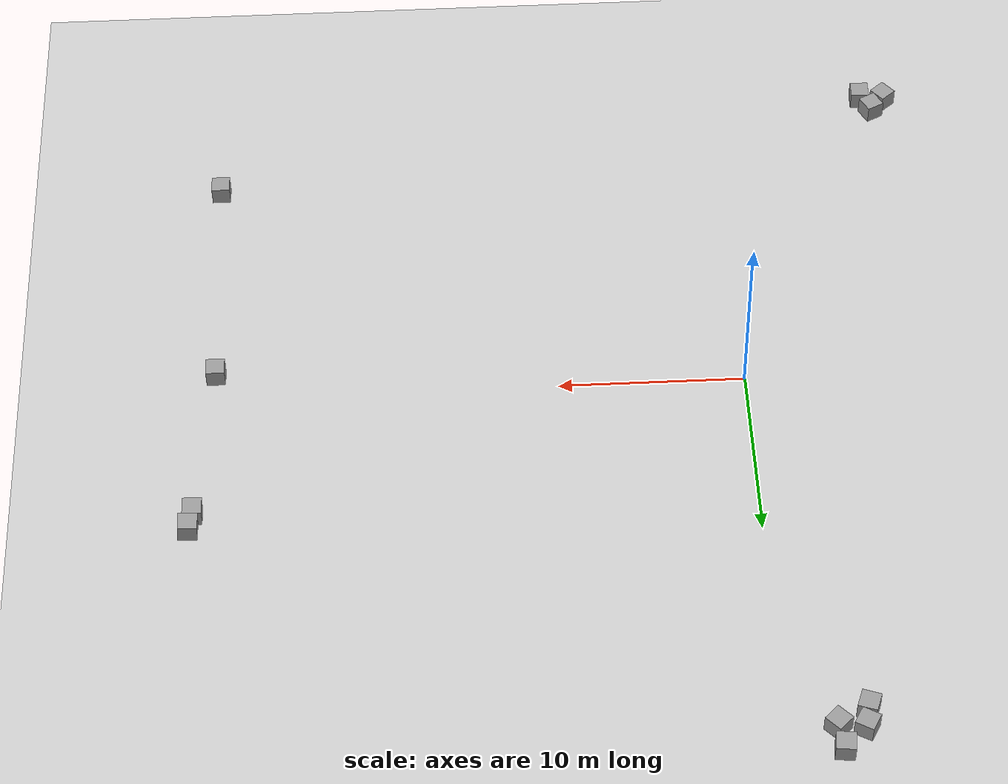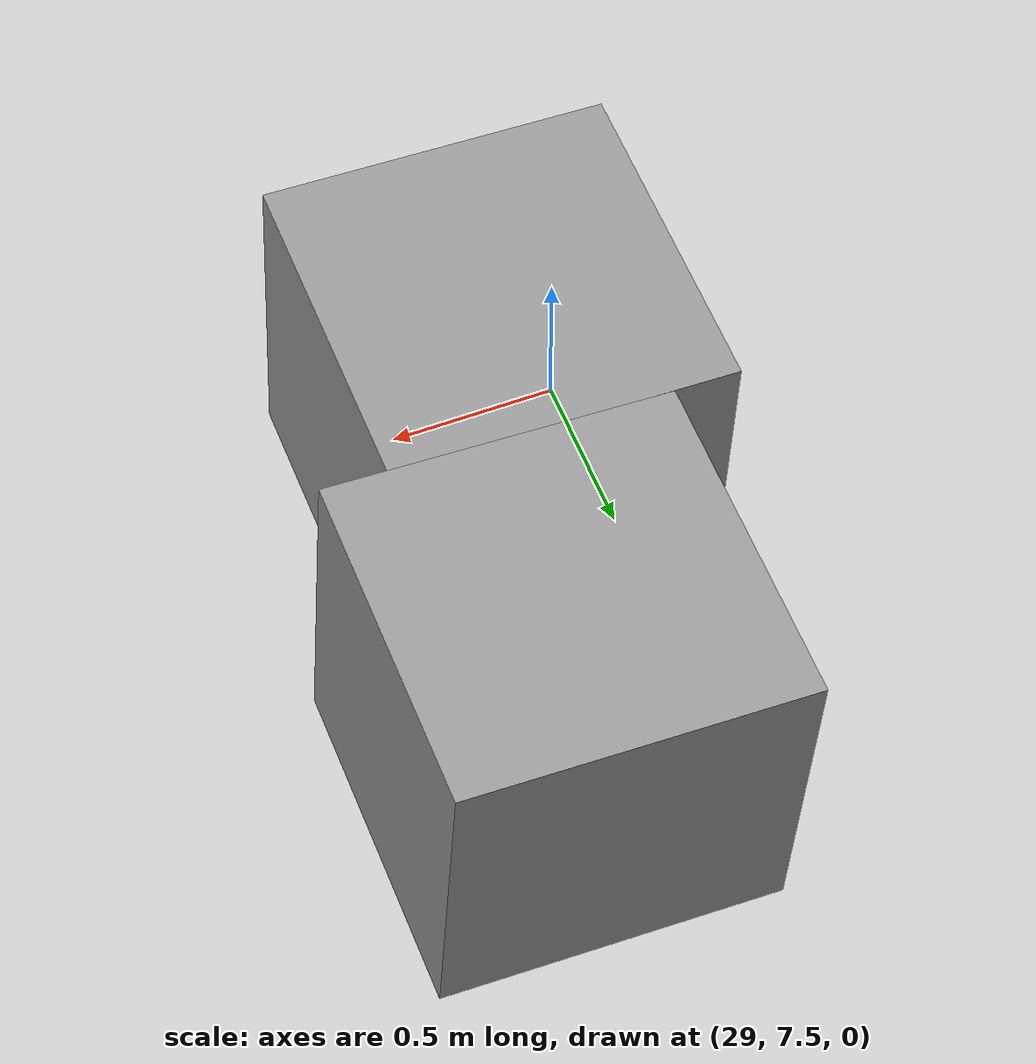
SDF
<sdf version="1.6">
 <world name="default">
  <model name="ground_plane">
   <static>1</static>
   <link name="link">
    <collision name="collision">
     <geometry><plane><normal>0 0 1</normal><size>100 100</size></plane></geometry>
     <surface><friction><ode><mu>100</mu><mu2>50</mu2></ode></friction></surface>
    </collision>
    <visual name="visual">
     <cast_shadows>0</cast_shadows>
     <geometry><plane><normal>0 0 1</normal><size>100 100</size></plane></geometry>
     <material>
      <script><uri>file://media/materials/scripts/gazebo.material</uri><name>Gazebo/Grey</name></script>
     </material>
    </visual>
   </link>
  </model>
  <light name="sun" type="directional">
   <pose>0 0 10 0 -0 0</pose>
   <diffuse>0.8 0.8 0.8 1</diffuse>
   <specular>0.1 0.1 0.1 1</specular>
   <attenuation>
    <range>1000</range>
    <constant>0.9</constant>
    <linear>0.01</linear>
    <quadratic>0.001</quadratic>
   </attenuation>
   <direction>-0.5 0.5 -1</direction>
  </light>
  <gravity>0 0 -9.8</gravity>
  <magnetic_field>6e-06 2.3e-05 -4.2e-05</magnetic_field>
  <atmosphere type="adiabatic"/>
  <physics name="default_physics" default="0" type="ode">
   <max_step_size>0.001</max_step_size>
   <real_time_factor>1</real_time_factor>
   <real_time_update_rate>1000</real_time_update_rate>
  </physics>
  <scene><ambient>0.4 0.4 0.4 1</ambient><background>0.7 0.7 0.7 1</background><shadows>1</shadows></scene>
  <spherical_coordinates>
   <surface_model>EARTH_WGS84</surface_model>
   <latitude_deg>0</latitude_deg>
   <longitude_deg>0</longitude_deg>
   <elevation>0</elevation>
   <heading_deg>0</heading_deg>
  </spherical_coordinates>
  <model name="unit_box_0">
   <pose>-9.18921 -19.7676 0.5 0 -0 0.461617</pose>
   <link name="link">
    <inertial>
     <mass>1</mass>
     <inertia>
      <ixx>0.166667</ixx>
      <ixy>0</ixy>
      <ixz>0</ixz>
      <iyy>0.166667</iyy>
      <iyz>0</iyz>
      <izz>0.166667</izz>
     </inertia>
    </inertial>
    <collision name="collision"><geometry><box><size>1 1 1</size></box></geometry></collision>
    <visual name="visual">
     <geometry><box><size>1 1 1</size></box></geometry>
     <material>
      <script><name>Gazebo/Grey</name><uri>file://media/materials/scripts/gazebo.material</uri></script>
     </material>
    </visual>
   </link>
  </model>
  <model name="unit_box_1_0">
   <pose>-2.45343 22.4637 0.5 0 -0 0.765343</pose>
   <link name="link">
    <inertial>
     <mass>1</mass>
     <inertia>
      <ixx>0.166667</ixx>
      <ixy>0</ixy>
      <ixz>0</ixz>
      <iyy>0.166667</iyy>
      <iyz>0</iyz>
      <izz>0.166667</izz>
     </inertia>
    </inertial>
    <collision name="collision"><geometry><box><size>1 1 1</size></box></geometry></collision>
    <visual name="visual">
     <geometry><box><size>1 1 1</size></box></geometry>
     <material>
      <script><name>Gazebo/Grey</name><uri>file://media/materials/scripts/gazebo.material</uri></script>
     </material>
    </visual>
   </link>
  </model>
  <model name="unit_box_1_1">
   <pose>-4.05764 21.5138 0.499996 -9e-06 0 -0.348044</pose>
   <link name="link">
    <inertial>
     <mass>1</mass>
     <inertia>
      <ixx>0.166667</ixx>
      <ixy>0</ixy>
      <ixz>0</ixz>
      <iyy>0.166667</iyy>
      <iyz>0</iyz>
      <izz>0.166667</izz>
     </inertia>
    </inertial>
    <collision name="collision"><geometry><box><size>1 1 1</size></box></geometry></collision>
    <visual name="visual">
     <geometry><box><size>1 1 1</size></box></geometry>
     <material>
      <script><name>Gazebo/Grey</name><uri>file://media/materials/scripts/gazebo.material</uri></script>
     </material>
    </visual>
   </link>
  </model>
  <model name="unit_box_1_3">
   <pose>28.294 -1.56728 0.499995 -0 1e-05 1e-06</pose>
   <link name="link">
    <inertial>
     <mass>1</mass>
     <inertia>
      <ixx>0.166667</ixx>
      <ixy>0</ixy>
      <ixz>0</ixz>
      <iyy>0.166667</iyy>
      <iyz>0</iyz>
      <izz>0.166667</izz>
     </inertia>
    </inertial>
    <collision name="collision"><geometry><box><size>1 1 1</size></box></geometry></collision>
    <visual name="visual">
     <geometry><box><size>1 1 1</size></box></geometry>
     <material>
      <script><name>Gazebo/Grey</name><uri>file://media/materials/scripts/gazebo.material</uri></script>
     </material>
    </visual>
   </link>
  </model>
  <model name="unit_box_1_4">
   <pose>28.2793 -15.0921 0.499995 0 1e-05 0</pose>
   <link name="link">
    <inertial>
     <mass>1</mass>
     <inertia>
      <ixx>0.166667</ixx>
      <ixy>0</ixy>
      <ixz>0</ixz>
      <iyy>0.166667</iyy>
      <iyz>0</iyz>
      <izz>0.166667</izz>
     </inertia>
    </inertial>
    <collision name="collision"><geometry><box><size>1 1 1</size></box></geometry></collision>
    <visual name="visual">
     <geometry><box><size>1 1 1</size></box></geometry>
     <material>
      <script><name>Gazebo/Grey</name><uri>file://media/materials/scripts/gazebo.material</uri></script>
     </material>
    </visual>
   </link>
  </model>
  <model name="unit_box_1">
   <pose>29.502 8.80505 0.535867 -0.0007 -0.060654 -0.001056</pose>
   <link name="link">
    <inertial>
     <mass>1</mass>
     <inertia>
      <ixx>0.166667</ixx>
      <ixy>0</ixy>
      <ixz>0</ixz>
      <iyy>0.166667</iyy>
      <iyz>0</iyz>
      <izz>0.166667</izz>
     </inertia>
    </inertial>
    <collision name="collision"><geometry><box><size>1 1 1</size></box></geometry></collision>
    <visual name="visual">
     <geometry><box><size>1 1 1</size></box></geometry>
     <material>
      <script><name>Gazebo/Grey</name><uri>file://media/materials/scripts/gazebo.material</uri></script>
     </material>
    </visual>
   </link>
  </model>
  <model name="unit_box_2">
   <pose>29.2997 7.80564 0.519301 -0.000747 -0.03958 -0.001564</pose>
   <link name="link">
    <inertial>
     <mass>1</mass>
     <inertia>
      <ixx>0.166667</ixx>
      <ixy>0</ixy>
      <ixz>0</ixz>
      <iyy>0.166667</iyy>
      <iyz>0</iyz>
      <izz>0.166667</izz>
     </inertia>
    </inertial>
    <collision name="collision"><geometry><box><size>1 1 1</size></box></geometry></collision>
    <visual name="visual">
     <geometry><box><size>1 1 1</size></box></geometry>
     <material>
      <script><name>Gazebo/Grey</name><uri>file://media/materials/scripts/gazebo.material</uri></script>
     </material>
    </visual>
   </link>
  </model>
  <model name="unit_box_3">
   <pose>-9.94253 -20.585 0.5 0 0 -0.882522</pose>
   <link name="link">
    <inertial>
     <mass>1</mass>
     <inertia>
      <ixx>0.166667</ixx>
      <ixy>0</ixy>
      <ixz>0</ixz>
      <iyy>0.166667</iyy>
      <iyz>0</iyz>
      <izz>0.166667</izz>
     </inertia>
    </inertial>
    <collision name="collision"><geometry><box><size>1 1 1</size></box></geometry></collision>
    <visual name="visual">
     <geometry><box><size>1 1 1</size></box></geometry>
     <material>
      <script><name>Gazebo/Grey</name><uri>file://media/materials/scripts/gazebo.material</uri></script>
     </material>
    </visual>
   </link>
  </model>
  <model name="unit_box_4">
   <pose>-8.6151 -20.7965 0.499995 1e-05 0 -0.028148</pose>
   <link name="link">
    <inertial>
     <mass>1</mass>
     <inertia>
      <ixx>0.166667</ixx>
      <ixy>0</ixy>
      <ixz>0</ixz>
      <iyy>0.166667</iyy>
      <iyz>0</iyz>
      <izz>0.166667</izz>
     </inertia>
    </inertial>
    <collision name="collision"><geometry><box><size>1 1 1</size></box></geometry></collision>
    <visual name="visual">
     <geometry><box><size>1 1 1</size></box></geometry>
     <material>
      <script><name>Gazebo/Grey</name><uri>file://media/materials/scripts/gazebo.material</uri></script>
     </material>
    </visual>
   </link>
  </model>
  <model name="unit_box_5">
   <pose>-2.64061 23.7942 0.499995 0 1e-05 -0.122243</pose>
   <link name="link">
    <inertial>
     <mass>1</mass>
     <inertia>
      <ixx>0.166667</ixx>
      <ixy>0</ixy>
      <ixz>0</ixz>
      <iyy>0.166667</iyy>
      <iyz>0</iyz>
      <izz>0.166667</izz>
     </inertia>
    </inertial>
    <collision name="collision"><geometry><box><size>1 1 1</size></box></geometry></collision>
    <visual name="visual">
     <geometry><box><size>1 1 1</size></box></geometry>
     <material>
      <script><name>Gazebo/Grey</name><uri>file://media/materials/scripts/gazebo.material</uri></script>
     </material>
    </visual>
   </link>
  </model>
  <model name="unit_box_6">
   <pose>-3.85068 22.593 0.500002 -0 -4e-06 -0.522624</pose>
   <link name="link">
    <inertial>
     <mass>1</mass>
     <inertia>
      <ixx>0.166667</ixx>
      <ixy>0</ixy>
      <ixz>0</ixz>
      <iyy>0.166667</iyy>
      <iyz>0</iyz>
      <izz>0.166667</izz>
     </inertia>
    </inertial>
    <collision name="collision"><geometry><box><size>1 1 1</size></box></geometry></collision>
    <visual name="visual">
     <geometry><box><size>1 1 1</size></box></geometry>
     <material>
      <script><name>Gazebo/Grey</name><uri>file://media/materials/scripts/gazebo.material</uri></script>
     </material>
    </visual>
   </link>
  </model>
 </world>
</sdf>
